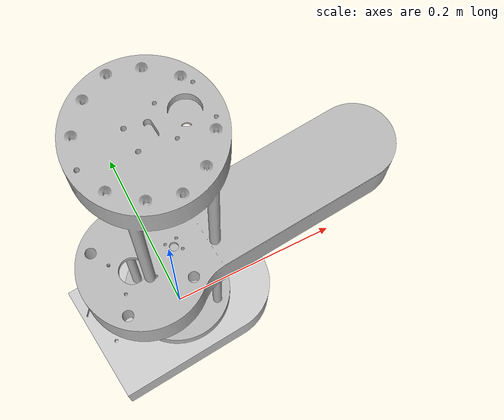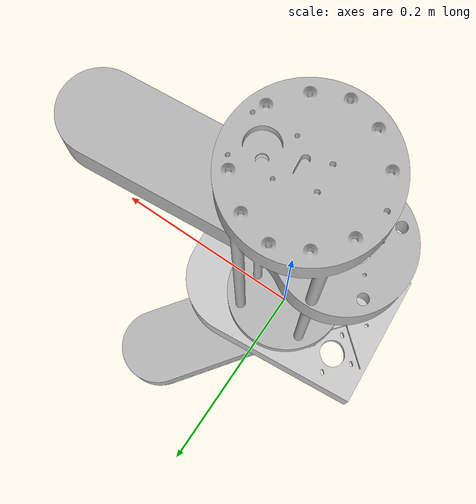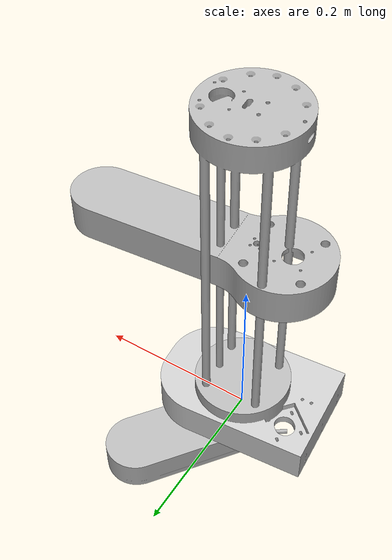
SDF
<?xml version="1.0" ?>
<sdf version="1.10">
  <world name="urdf_to_sdf_gazebo_world">

    <!-- Physics -->
    <physics name="default_physics" type="ode">
      <max_step_size>0.001</max_step_size>
      <real_time_factor>1.0</real_time_factor>
    </physics>

    <!-- Sun / Directional light -->
    <light type="directional" name="sun">
      <cast_shadows>true</cast_shadows>
      <pose>0 0 10 0 0 0</pose>
      <diffuse>0.8 0.8 0.8 1</diffuse>
      <specular>0.2 0.2 0.2 1</specular>
      <attenuation>
        <range>1000</range>
        <constant>0.9</constant>
        <linear>0.01</linear>
        <quadratic>0.001</quadratic>
      </attenuation>
      <direction>-0.5 0.1 -0.9</direction>
    </light>

    <!-- Robot model -->
    <model name="urdf_to_sdf_gazebo">

      <!-- Links -->
      <link name="base_link">
        <inertial>
          <pose>-0.0070117442454045035 -0.004059755672044273 0.01853626945061938 0 0 0</pose>
          <mass>3.938894865418581</mass>
          <inertia>
            <ixx>0.009172</ixx>
            <iyy>0.018106</iyy>
            <izz>0.026037</izz>
            <ixy>-0.000742</ixy>
            <iyz>3.6e-05</iyz>
            <ixz>-0.000108</ixz>
          </inertia>
        </inertial>
        <visual name="base_link_visual">
          <pose>0 0 0 0 0 0</pose>
          <geometry>
            <mesh>
              <uri>file:///home/general/urdf_to_sdf_gazebo_description/meshes/base_link.stl</uri>
              <scale>0.001 0.001 0.001</scale>
            </mesh>
          </geometry>
          <material>
            <ambient>0.8 0.8 0.8 1</ambient>
            <diffuse>0.8 0.8 0.8 1</diffuse>
            <specular>0.5 0.5 0.5 1</specular>
          </material>
        </visual>
        <collision name="base_link_collision">
          <pose>0 0 0 0 0 0</pose>
          <geometry>
            <mesh>
              <uri>file:///home/general/urdf_to_sdf_gazebo_description/meshes/base_link.stl</uri>
              <scale>0.001 0.001 0.001</scale>
            </mesh>
          </geometry>
        </collision>
      </link>

      <!-- gripper_handleftlink_1 -->
      <link name="gripper_handleftlink_1">
        <inertial>
          <pose>-0.010868150575173707 -0.008378638812419237 -0.046602806658064974 0 0 0</pose>
          <mass>0.36256322250397477</mass>
          <inertia>
            <ixx>0.000417</ixx>
            <iyy>0.000417</iyy>
            <izz>5.8e-05</izz>
            <ixy>-4e-06</ixy>
            <iyz>-3.8e-05</iyz>
            <ixz>-4.7e-05</ixz>
          </inertia>
        </inertial>
        <visual name="visual">
          <pose>-0.400195 -0.16626 -0.128702 0 0 0</pose>
          <geometry>
            <mesh>
              <uri>file:///home/general/urdf_to_sdf_gazebo_description/meshes/gripper_handleftlink_1.stl</uri>
              <scale>0.001 0.001 0.001</scale>
            </mesh>
          </geometry>
        </visual>
        <collision name="collision">
          <pose>-0.400195 -0.16626 -0.128702 0 0 0</pose>
          <geometry>
            <mesh>
              <uri>file:///home/general/urdf_to_sdf_gazebo_description/meshes/gripper_handleftlink_1.stl</uri>
              <scale>0.001 0.001 0.001</scale>
            </mesh>
          </geometry>
        </collision>
      </link>

      <!-- gripper_mechanismslider_link_1 -->
      <link name="gripper_mechanismslider_link_1">
        <inertial>
          <pose>0.012024165264874431 0.009150823772680894 -0.04620580836729517 0 0 0</pose>
          <mass>0.3625920933827462</mass>
          <inertia>
            <ixx>0.000411</ixx>
            <iyy>0.000413</iyy>
            <izz>6.1e-05</izz>
            <ixy>-6e-06</ixy>
            <iyz>4.1e-05</iyz>
            <ixz>5.3e-05</ixz>
          </inertia>
        </inertial>
        <visual name="visual">
          <pose>-0.299785 -0.09181 -0.128702 0 0 0</pose>
          <geometry>
            <mesh>
              <uri>file:///home/general/urdf_to_sdf_gazebo_description/meshes/gripper_mechanismslider_link_1.stl</uri>
              <scale>0.001 0.001 0.001</scale>
            </mesh>
          </geometry>
        </visual>
        <collision name="collision">
          <pose>-0.299785 -0.09181 -0.128702 0 0 0</pose>
          <geometry>
            <mesh>
              <uri>file:///home/general/urdf_to_sdf_gazebo_description/meshes/gripper_mechanismslider_link_1.stl</uri>
              <scale>0.001 0.001 0.001</scale>
            </mesh>
          </geometry>
        </collision>
      </link>

      <!-- gripper_rail_6mm_bottom_link_1 -->
      <link name="gripper_rail_6mm_bottom_link_1">
        <inertial>
          <pose>0.00022857868610060006 0.0004476121226026364 -0.029491948728123968 0 0 0</pose>
          <mass>0.6641305311549246</mass>
          <inertia>
            <ixx>0.000618</ixx>
            <iyy>0.000653</iyy>
            <izz>0.000363</izz>
            <ixy>-5.3e-05</ixy>
            <iyz>-3e-06</iyz>
            <ixz>5e-06</ixz>
          </inertia>
        </inertial>
        <visual name="visual">
          <pose>-0.349498 -0.128931 -0.162637 0 0 0</pose>
          <geometry>
            <mesh>
              <uri>file:///home/general/urdf_to_sdf_gazebo_description/meshes/gripper_rail_6mm_bottom_link_1.stl</uri>
              <scale>0.001 0.001 0.001</scale>
            </mesh>
          </geometry>
        </visual>
        <collision name="collision">
          <pose>-0.349498 -0.128931 -0.162637 0 0 0</pose>
          <geometry>
            <mesh>
              <uri>file:///home/general/urdf_to_sdf_gazebo_description/meshes/gripper_rail_6mm_bottom_link_1.stl</uri>
              <scale>0.001 0.001 0.001</scale>
            </mesh>
          </geometry>
        </collision>
      </link>

      <!-- arm_two_cover_link_1 -->
      <link name="arm_two_cover_link_1">
        <inertial>
          <pose>0.035241807533543335 0.04796212281162526 -0.03376987123810021 0 0 0</pose>
          <mass>2.511589379326445</mass>
          <inertia>
            <ixx>0.007821</ixx>
            <iyy>0.005245</iyy>
            <izz>0.011615</izz>
            <ixy>-0.004163</ixy>
            <iyz>0.000509</iyz>
            <ixz>0.000373</ixz>
          </inertia>
        </inertial>
        <visual name="visual">
          <pose>-0.268734 -0.019208 -0.22035 0 0 0</pose>
          <geometry>
            <mesh>
              <uri>file:///home/general/urdf_to_sdf_gazebo_description/meshes/arm_two_cover_link_1.stl</uri>
              <scale>0.001 0.001 0.001</scale>
            </mesh>
          </geometry>
        </visual>
        <collision name="collision">
          <pose>-0.268734 -0.019208 -0.22035 0 0 0</pose>
          <geometry>
            <mesh>
              <uri>file:///home/general/urdf_to_sdf_gazebo_description/meshes/arm_two_cover_link_1.stl</uri>
              <scale>0.001 0.001 0.001</scale>
            </mesh>
          </geometry>
        </collision>
      </link>

      <!-- z-axis_top_plate_link_1 -->
      <link name="z-axis_top_plate_link_1">
        <inertial>
          <pose>0.0008602439988536284 0.0002178103000136028 0.18808008938577278 0 0 0</pose>
          <mass>4.175380318770853</mass>
          <inertia>
            <ixx>0.146443</ixx>
            <iyy>0.146523</iyy>
            <izz>0.008141</izz>
            <ixy>-1.4e-05</ixy>
            <iyz>-0.000149</iyz>
            <ixz>9.2e-05</ixz>
          </inertia>
        </inertial>
        <visual name="visual">
          <pose>-0.041226 9.1e-05 -0.033561 0 0 0</pose>
          <geometry>
            <mesh>
              <uri>file:///home/general/urdf_to_sdf_gazebo_description/meshes/z-axis_top_plate_link_1.stl</uri>
              <scale>0.001 0.001 0.001</scale>
            </mesh>
          </geometry>
        </visual>
        <collision name="collision">
          <pose>-0.041226 9.1e-05 -0.033561 0 0 0</pose>
          <geometry>
            <mesh>
              <uri>file:///home/general/urdf_to_sdf_gazebo_description/meshes/z-axis_top_plate_link_1.stl</uri>
              <scale>0.001 0.001 0.001</scale>
            </mesh>
          </geometry>
        </collision>
      </link>

      <!-- arm_cover_link_1 -->
      <link name="arm_cover_link_1">
        <inertial>
          <pose>0.06134439992643813 0.0054249821664409895 -0.022471905199493963 0 0 0</pose>
          <mass>3.3320688978919453</mass>
          <inertia>
            <ixx>0.003993</ixx>
            <iyy>0.02822</iyy>
            <izz>0.030522</izz>
            <ixy>-0.002139</ixy>
            <iyz>0.000107</iyz>
            <ixz>0.001225</ixz>
          </inertia>
        </inertial>
        <visual name="visual">
          <pose>-0.074476 -0.022213 -0.00035 0 0 0</pose>
          <geometry>
            <mesh>
              <uri>file:///home/general/urdf_to_sdf_gazebo_description/meshes/arm_cover_link_1.stl</uri>
              <scale>0.001 0.001 0.001</scale>
            </mesh>
          </geometry>
        </visual>
        <collision name="collision">
          <pose>-0.074476 -0.002213 -0.26485 0 0 0</pose>
          <geometry>
            <mesh>
              <uri>file:///home/general/urdf_to_sdf_gazebo_description/meshes/arm_cover_link_1.stl</uri>
              <scale>0.001 0.001 0.001</scale>
            </mesh>
          </geometry>
        </collision>
      </link>

      <!-- Joints -->
      <joint name="Slider_4" type="prismatic">
        <pose>0.050697 0.037329 -0.033935 0 0 0</pose>
        <parent>gripper_rail_6mm_bottom_link_1</parent>
        <child>gripper_handleftlink_1</child>
        <axis>
          <xyz>0.803283 0.595598 0</xyz>
          <limit>
            <lower>-0.015</lower>
            <upper>0</upper>
            <effort>100</effort>
            <velocity>100</velocity>
          </limit>
        </axis>
      </joint>

      <joint name="Slider_5" type="prismatic">
        <pose>-0.049713 -0.037121 -0.033935 0 0 0</pose>
        <parent>gripper_rail_6mm_bottom_link_1</parent>
        <child>gripper_mechanismslider_link_1</child>
        <axis>
          <xyz>-0.803283 -0.595598 0</xyz>
          <limit>
            <lower>-0.019</lower>
            <upper>0</upper>
            <effort>100</effort>
            <velocity>100</velocity>
          </limit>
        </axis>
      </joint>

      <joint name="Revolute_7" type="revolute">
        <pose>0.080764 0.109723 -0.057713 0 0 0</pose>
        <parent>arm_two_cover_link_1</parent>
        <child>gripper_rail_6mm_bottom_link_1</child>
        <axis>
          <xyz>0 0 1</xyz>
          <limit>
            <lower>-0.959931</lower>
            <upper>2.007129</upper>
            <effort>100</effort>
            <velocity>100</velocity>
          </limit>
        </axis>
      </joint>

      <joint name="Revolute_8" type="revolute">
        <pose>0.194258 0.016995 -0.0445 0 0 0</pose>
        <parent>arm_cover_link_1</parent>
        <child>arm_two_cover_link_1</child>
        <axis>
          <xyz>0 0 1</xyz>
          <limit>
            <lower>-3.316126</lower>
            <upper>1.570796</upper>
            <effort>100</effort>
            <velocity>100</velocity>
          </limit>
        </axis>
      </joint>

      <joint name="Revolute_10" type="revolute">
        <pose>0.041226 -9.1e-05 0.033561 0 0 0</pose>
        <parent>base_link</parent>
        <child>z-axis_top_plate_link_1</child>
        <axis>
          <xyz>0 0 1</xyz>
          <limit>
            <lower>-2.356194</lower>
            <upper>2.007129</upper>
            <effort>100</effort>
            <velocity>100</velocity>
          </limit>
        </axis>
      </joint>

      <joint name="Slider_11" type="prismatic">
        <pose>0.03325 0.002304 0.231289 0 0 0</pose>
        <parent>z-axis_top_plate_link_1</parent>
        <child>arm_cover_link_1</child>
        <axis>
          <xyz>0 0 -1</xyz>
          <limit>
            <lower>-0.13</lower>
            <upper>0.1</upper>
            <effort>100</effort>
            <velocity>100</velocity>
          </limit>
        </axis>
      </joint>

    </model>
  </world>
</sdf>
